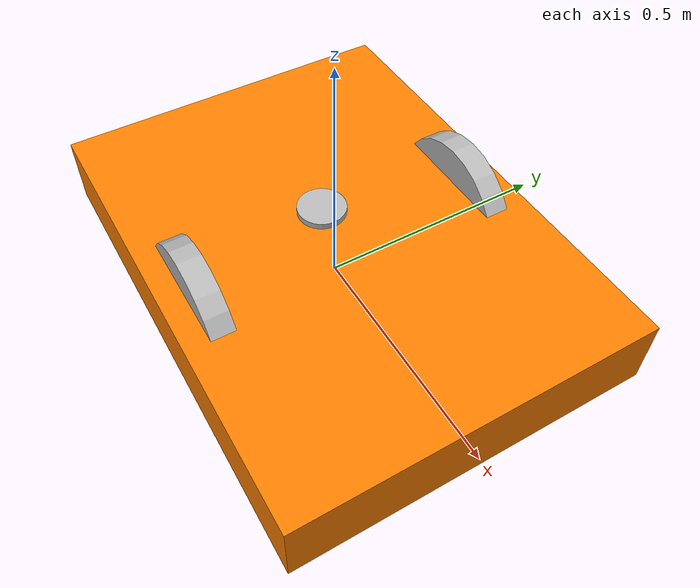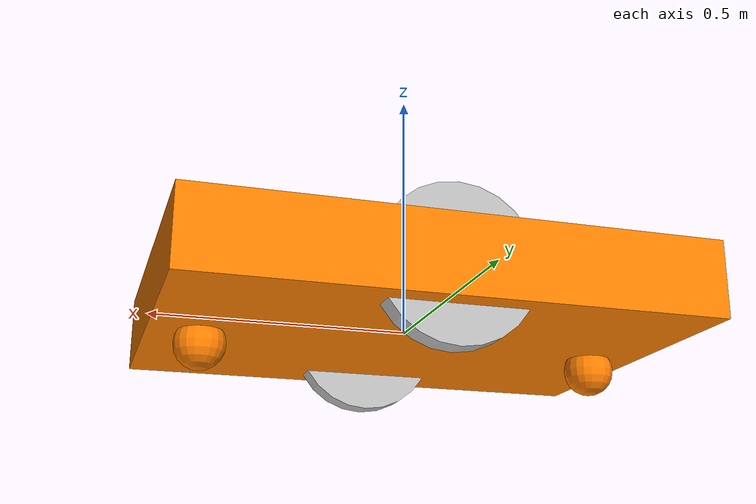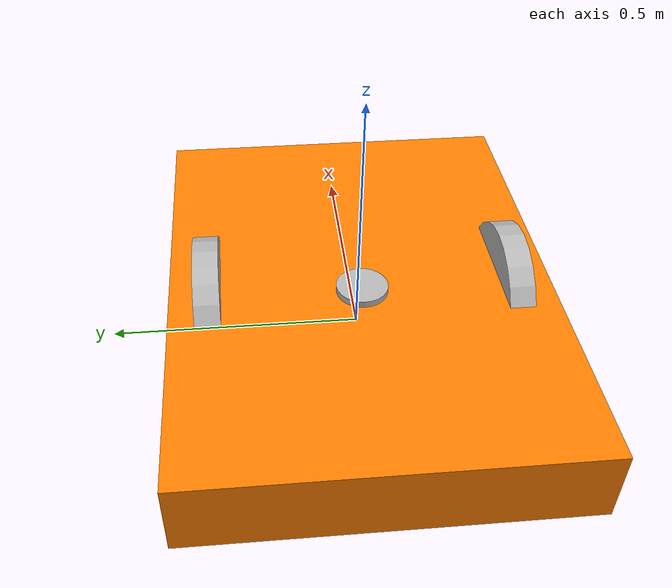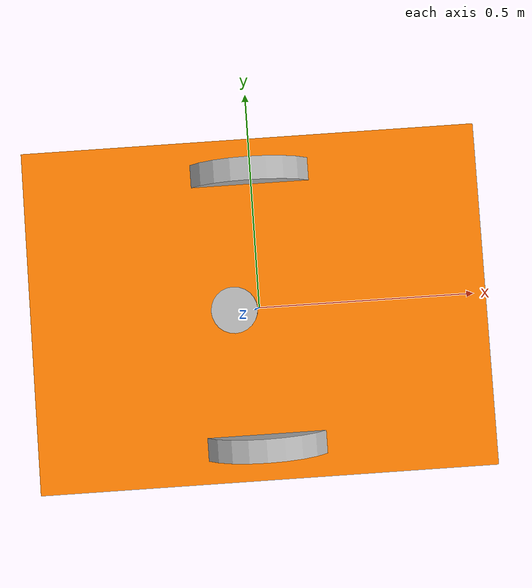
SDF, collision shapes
<?xml version="1.0" ?>
<sdf version="1.4">
  <model name="amazon_robot2">

    <link name="base">
      <inertial>
        <pose>0 0 .05 0 0 0</pose>
        <inertia>
          <ixx>0.000</ixx>
          <ixy>0.000</ixy>
          <ixz>0.000</ixz>
          <iyy>0.000</iyy>
          <iyz>0.000</iyz>
          <izz>0.000</izz>
        </inertia>
        <mass>2</mass>
      </inertial>

      <collision name="base_collision">
        <pose>0 0 .05 0 0 0</pose>
        <geometry>
          <box>
            <size>1 .750 .15</size>
          </box>
        </geometry>
      </collision>

      <visual name="base_visual">
        <pose>0 0 .05 0 0 0</pose>
        <geometry>
          <box>
            <size>1 .750 .15</size>
          </box>
        </geometry>
        <material>
          <ambient>1 0.5 0 1</ambient>
          <diffuse>1 0.5 0 1</diffuse>
          <specular>0.1 0.1 0.1 1</specular>
          <emissive>0 0 0 0</emissive>
        </material>
      </visual>

      <collision name="front_caster_collision">
        <pose>0.40 0 -0.05 0 0 0</pose>
        <geometry>
          <sphere>
            <radius>.05</radius>
          </sphere>
        </geometry>
        <surface>
          <friction>
            <ode>
              <mu>100000.0</mu>
              <mu2>100000.0</mu2>
              <fdir1>0 0 0</fdir1>
              <slip1>0</slip1>
              <slip2>0</slip2>
            </ode>
          </friction>
        </surface>
      </collision>

      <visual name="front_caster_visual">
        <pose>0.40 0 -0.05 0 0 0</pose>
        <geometry>
          <sphere>
            <radius>.05</radius>
          </sphere>
        </geometry>
      </visual>

      <collision name="back_caster_collision">
        <pose>-0.40 0 -0.05 0 0 0</pose>
        <geometry>
          <sphere>
            <radius>.05</radius>
          </sphere>
        </geometry>
        <surface>
          <friction>
            <ode>
              <mu>100000.0</mu>
              <mu2>100000.0</mu2>
              <fdir1>0 0 0</fdir1>
              <slip1>0</slip1>
              <slip2>0</slip2>
            </ode>
          </friction>
        </surface>
      </collision>

      <visual name="back_caster_visual">
        <pose>-0.40 0 -0.05 0 0 0</pose>
        <geometry>
          <sphere>
            <radius>.05</radius>
          </sphere>
        </geometry>
      </visual>
    </link>

    <link name="left_wheel">
      <pose>0 0.30 0.05 0 1.5707 1.5707</pose>
      <collision name="collision">
        <geometry>
          <cylinder>
            <radius>.15</radius>
            <length>.05</length>
          </cylinder>
        </geometry>
      </collision>
      <visual name="visual">
        <geometry>
          <cylinder>
            <radius>.15</radius>
            <length>.05</length>
          </cylinder>
        </geometry>
      </visual>
    </link>

    <link name="right_wheel">
      <pose>0 -0.30 0.05 0 1.5707 1.5707</pose>
      <collision name="collision">
        <geometry>
          <cylinder>
            <radius>.15</radius>
            <length>.05</length>
          </cylinder>
        </geometry>
      </collision>
      <visual name="visual">
        <geometry>
          <cylinder>
            <radius>.15</radius>
            <length>.05</length>
          </cylinder>
        </geometry>
      </visual>
    </link>

    <link name="lidar">
      <inertial>
        <pose>-0.052 0 0.111 0 0 0</pose>
        <inertia>
          <ixx>0.001</ixx>
          <ixy>0.000</ixy>
          <ixz>0.000</ixz>
          <iyy>0.001</iyy>
          <iyz>0.000</iyz>
          <izz>0.001</izz>
        </inertia>
        <mass>0.125</mass>
      </inertial>

      <collision name="lidar_sensor_collision">
        <pose>-0.052 0 0.111 0 0 0</pose>
        <geometry>
          <cylinder>
            <radius>0.0508</radius>
            <length>0.055</length>
          </cylinder>
        </geometry>
      </collision>

      <visual name="lidar_sensor_visual">
        <pose>-0.064 0 0.121 0 0 0</pose>
        <geometry>
          <mesh>
            <uri>model://amazon_robot/meshes/lds.dae</uri>
            <scale>0.001 0.001 0.001</scale>
          </mesh>
        </geometry>
      </visual>

      <sensor name="hls_lfcd_lds" type="ray">
        <always_on>1</always_on>
        <visualize>0</visualize>
        <pose>-0.064 0 0.121 0 0 0</pose>
        <update_rate>1800</update_rate>
        <ray>
          <scan>
            <horizontal>
              <samples>360</samples>
              <resolution>1.000000</resolution>
              <min_angle>0.000000</min_angle>
              <max_angle>6.280000</max_angle>
            </horizontal>
          </scan>
          <range>
            <min>0.120000</min>
            <max>3.5</max>
            <resolution>0.015000</resolution>
          </range>
          <noise>
            <type>gaussian</type>
            <mean>0.0</mean>
            <stddev>0.01</stddev>
          </noise>
        </ray>
      </sensor>
    </link>

    <!-- Hokuyo laser -->

<!--        &lt;!&ndash; ROS Laser Plugin &ndash;&gt;-->

    <!-- Lift platform -->

    <!-- Prismatic joint -->
    <!-- Screw rotate ends here -->

    <joint type="revolute" name="left_wheel_joint">
      <pose>0 0 -0.03 0 0 0</pose>
      <child>left_wheel</child>
      <parent>base</parent>
      <axis>
        <xyz>0 0 1</xyz>
      </axis>
    </joint>

    <joint type="revolute" name="right_wheel_joint">
      <pose>0 0 0.03 0 0 0</pose>
      <child>right_wheel</child>
      <parent>base</parent>
      <axis>
        <xyz>0 0 1</xyz>
      </axis>
    </joint>

    <joint name="lidar_joint" type="fixed">
      <parent>base</parent>
      <child>lidar</child>
      <pose>-0.064 0 0.121 0 0 0</pose>
      <axis>
        <xyz>0 0 1</xyz>
        <use_parent_model_frame>true</use_parent_model_frame>
      </axis>
    </joint>
    <!-- Attach the screw plugin to this model-->

    <!-- Attach the ROS Differential Drive Plugin to this model> -->

  </model>
</sdf>
